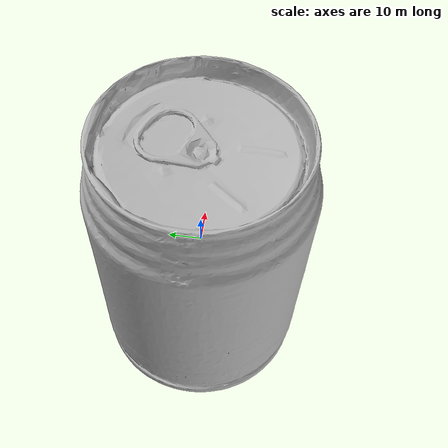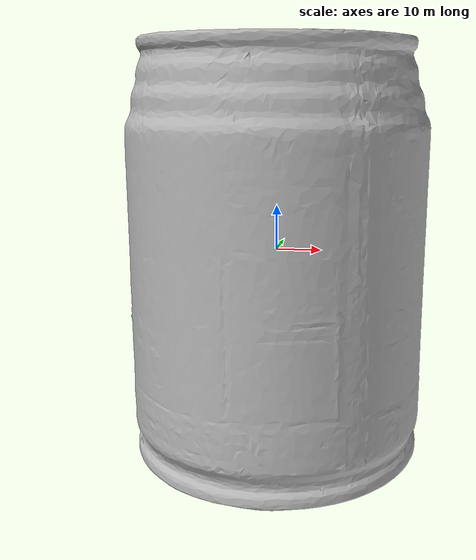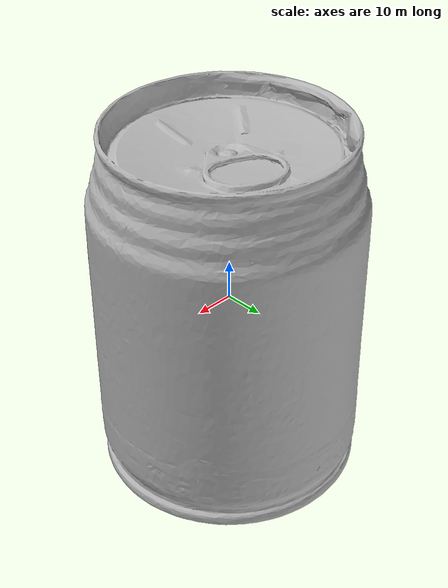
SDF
<sdf version="1.4">
 <world name="default">
  <light name="light1" type="point">
   <pose>0 0 1 0 0 0</pose>
   <diffuse>3 3 3 1</diffuse>
   <specular>3 3 3 1</specular>
  </light>
  <light name="light2" type="point">
   <pose>0 0.5 2 0 0 0</pose>
   <diffuse>1 1 1 1</diffuse>
   <specular>1 1 1 1</specular>
  </light>
  <light name="light3" type="point">
   <pose>0 0.5 2 0 0 0</pose>
   <diffuse>3 3 3 1</diffuse>
   <specular>3 3 3 1</specular>
  </light>
  <scene><ambient>0.7 0.7 0.7</ambient></scene>
  <model name="box1">
   <link name="link_box1">
    <collision name="default">
     <geometry>
      <mesh><uri>model://wooden_puzzle1/collision_meshes/collision.obj</uri><scale>1.0 1.0 1.0</scale></mesh>
     </geometry>
     <surface>
      <friction><ode><mu>0.5</mu><mu2>0.5</mu2></ode></friction>
      <contact><ode><max_vel>0</max_vel><min_depth>0.0001</min_depth><kp>1e8</kp></ode></contact>
     </surface>
    </collision>
    <visual name="default">
     <geometry>
      <mesh><uri>model://wooden_puzzle1/visual_meshes/visual.dae</uri><scale>1.0 1.0 1.0</scale></mesh>
     </geometry>
    </visual>
    <inertial>
     <mass>0.020629532635211945</mass>
     <pose>-0.0001735068071866408 7.972260937094688e-05 -9.191555000143126e-05 -0.07784798349428995 -0.2636160818751574 -0.552872324185161</pose>
     <inertia>
      <ixx>3.8922285e-06</ixx>
      <iyy>3.817302e-06</iyy>
      <izz>3.8628423e-06</izz>
      <ixy>0</ixy>
      <ixz>0</ixz>
      <iyz>0</iyz>
     </inertia>
    </inertial>
   </link>
   <pose>0.13330072164535522 -0.17832505702972412 0.016802016645669937 0.010512164548131434 -0.0094545360538811 1.4138997267015367</pose>
  </model>
  <model name="box3">
   <link name="link_box3">
    <collision name="default">
     <geometry>
      <mesh><uri>model://wooden_puzzle2/collision_meshes/collision.obj</uri><scale>1.0 1.0 1.0</scale></mesh>
     </geometry>
     <surface>
      <friction><ode><mu>0.5</mu><mu2>0.5</mu2></ode></friction>
      <contact><ode><max_vel>0</max_vel><min_depth>0.0001</min_depth><kp>1e8</kp></ode></contact>
     </surface>
    </collision>
    <visual name="default">
     <geometry>
      <mesh><uri>model://wooden_puzzle2/visual_meshes/visual.dae</uri><scale>1.0 1.0 1.0</scale></mesh>
     </geometry>
    </visual>
    <inertial>
     <mass>0.05583015829324722</mass>
     <pose>2.7402536943554878e-05 4.997663199901581e-05 6.587122334167361e-05 -0.19203199902598803 0.6112853789707493 -0.6338693450254121</pose>
     <inertia>
      <ixx>1.0378231e-05</ixx>
      <iyy>1.06642165e-05</iyy>
      <izz>1.0512509e-05</izz>
      <ixy>0</ixy>
      <ixz>0</ixz>
      <iyz>0</iyz>
     </inertia>
    </inertial>
   </link>
   <pose>0.046957969665527344 -0.0032817404717206955 0.016917726024985313 0.020849236776677244 0.0007206560226424716 -1.908790236650297</pose>
  </model>
  <model name="can1">
   <link name="link_can1">
    <collision name="default">
     <geometry>
      <mesh><uri>model://pepsi/collision_meshes/collision.obj</uri><scale>1.0 1.0 1.0</scale></mesh>
     </geometry>
     <surface>
      <friction><ode><mu>0.5</mu><mu2>0.5</mu2></ode></friction>
      <contact><ode><max_vel>0</max_vel><min_depth>0.0001</min_depth><kp>1e8</kp></ode></contact>
     </surface>
    </collision>
    <visual name="default">
     <geometry><mesh><uri>model://pepsi/visual_meshes/visual.dae</uri><scale>1.0 1.0 1.0</scale></mesh></geometry>
    </visual>
    <inertial>
     <mass>0.49348899722099304</mass>
     <pose>-7.5590331107378e-05 2.9931279641459696e-05 -0.0003384356386959553 -0.0010677622415870868 -0.0021735774955872703 0.5673701275352521</pose>
     <inertia>
      <ixx>0.0009831247</ixx>
      <iyy>0.0009824084</iyy>
      <izz>0.00020924417</izz>
      <ixy>0</ixy>
      <ixz>0</ixz>
      <iyz>0</iyz>
     </inertia>
    </inertial>
   </link>
   <pose>0.13145996630191803 0.07002319395542145 0.07449635863304138 -1.9297475269428236e-05 2.063538427721529e-06 2.9361966378982167</pose>
  </model>
  <model name="can2">
   <link name="link_can2">
    <collision name="default">
     <geometry>
      <mesh><uri>model://redbull/collision_meshes/collision.obj</uri><scale>1.0 1.0 1.0</scale></mesh>
     </geometry>
     <surface>
      <friction><ode><mu>0.5</mu><mu2>0.5</mu2></ode></friction>
      <contact><ode><max_vel>0</max_vel><min_depth>0.0001</min_depth><kp>1e8</kp></ode></contact>
     </surface>
    </collision>
    <visual name="default">
     <geometry>
      <mesh><uri>model://redbull/visual_meshes/visual.dae</uri><scale>1.0 1.0 1.0</scale></mesh>
     </geometry>
    </visual>
    <inertial>
     <mass>0.3443465232849121</mass>
     <pose>-2.2127078409539536e-05 -0.00012659528874792159 -0.0006860987632535398 0.0011367237692686564 -0.010800964902263904 0.5859097418646089</pose>
     <inertia>
      <ixx>0.0003237599</ixx>
      <iyy>0.00032403314</iyy>
      <izz>0.00019212745</izz>
      <ixy>0</ixy>
      <ixz>0</ixz>
      <iyz>0</iyz>
     </inertia>
    </inertial>
   </link>
   <pose>-0.0670802965760231 -0.18192729353904724 0.04638562723994255 -0.010489000176928671 0.007261588166631863 3.141363592495981</pose>
  </model>
  <physics type="ode">
   <max_contacts>50</max_contacts>
   <ode>
    <solver><type>quick</type><iters>75</iters></solver>
    <constraints>
     <contact_max_correcting_vel>0</contact_max_correcting_vel>
     <contact_surface_layer>0</contact_surface_layer>
    </constraints>
   </ode>
  </physics>
 </world>
</sdf>
